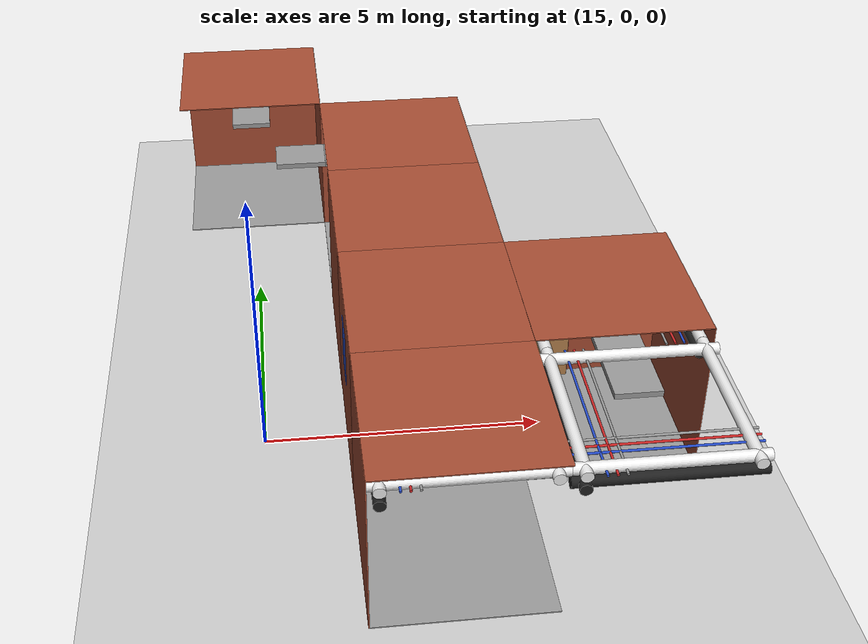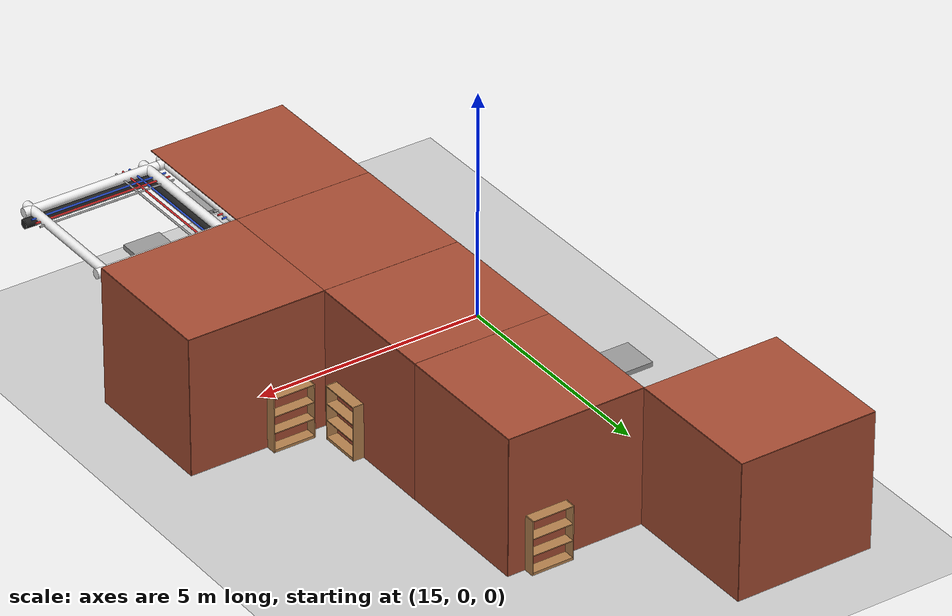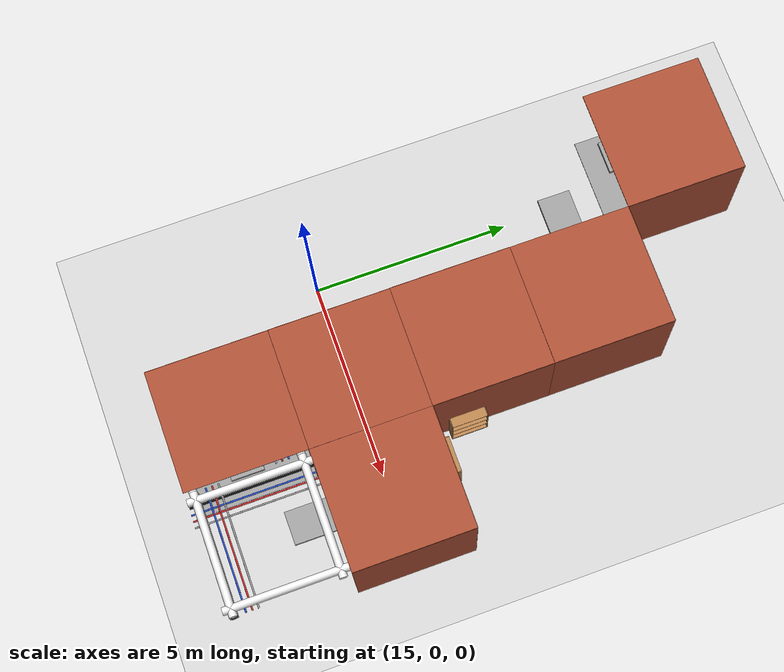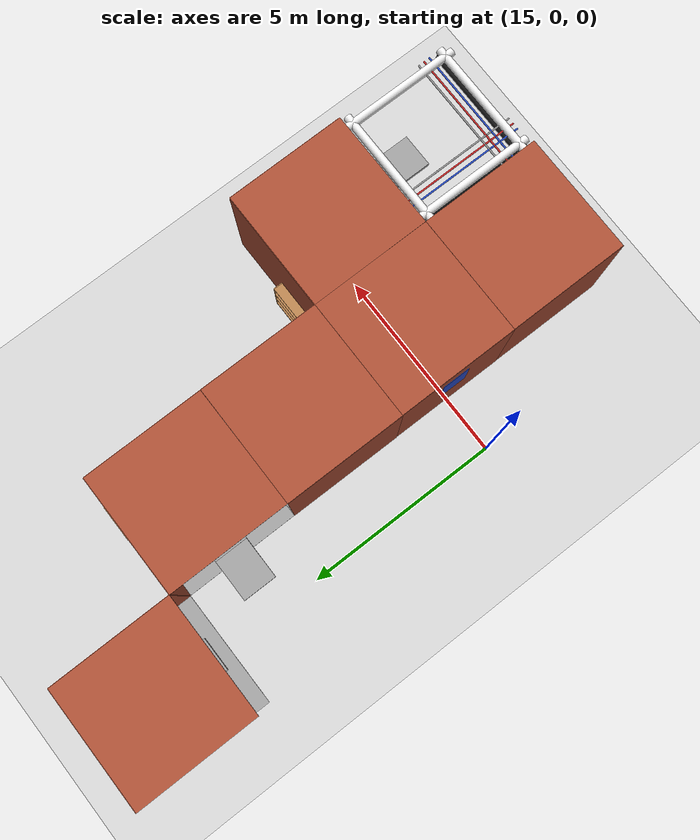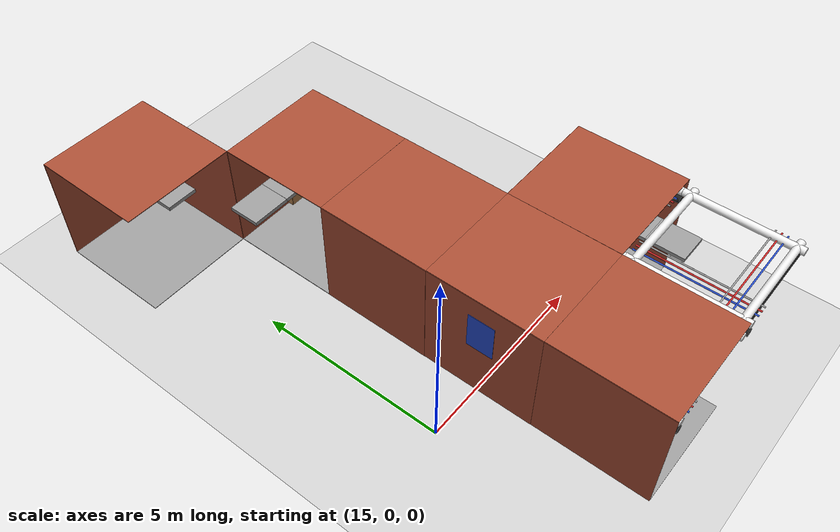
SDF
<sdf version="1.6">
 <world name="default">
  <model name="ground_plane">
   <static>1</static>
   <link name="link">
    <collision name="collision">
     <geometry><plane><normal>0 0 1</normal><size>200 200</size></plane></geometry>
     <surface><friction><ode><mu>100</mu><mu2>50</mu2></ode></friction></surface>
    </collision>
    <visual name="visual">
     <cast_shadows>0</cast_shadows>
     <geometry><plane><normal>0 0 1</normal><size>200 200</size></plane></geometry>
     <material>
      <script><uri>file://media/materials/scripts/gazebo.material</uri><name>Gazebo/Grey</name></script>
     </material>
    </visual>
   </link>
  </model>
  <model name="wall_front_5_3_0_2">
   <static>1</static>
   <pose>16.5 9.0 1.5 0.0 0.0 -1.57</pose>
   <link name="link">
    <collision name="collision"><geometry><box><size>3 0.02 3</size></box></geometry></collision>
    <visual name="visual">
     <material>
      <script><name>Gazebo/Bricks</name><uri>file://media/materials/scripts/gazebo.material</uri></script>
     </material>
     <geometry><box><size>3 0.02 3</size></box></geometry>
    </visual>
   </link>
  </model>
  <model name="wall_left_5_3_0_2">
   <static>1</static>
   <pose>15.0 10.5 1.5 0.0 0.0 0.0</pose>
   <link name="link">
    <collision name="collision"><geometry><box><size>3 0.02 3</size></box></geometry></collision>
    <visual name="visual">
     <material>
      <script><name>Gazebo/Bricks</name><uri>file://media/materials/scripts/gazebo.material</uri></script>
     </material>
     <geometry><box><size>3 0.02 3</size></box></geometry>
    </visual>
   </link>
  </model>
  <model name="wall_top_5_3_0_2">
   <static>1</static>
   <pose>15.0 9.0 3.0 1.57 0.0 -1.57</pose>
   <link name="link">
    <collision name="collision"><geometry><box><size>3 0.02 3</size></box></geometry></collision>
    <visual name="visual">
     <material>
      <script><name>Gazebo/Bricks</name><uri>file://media/materials/scripts/gazebo.material</uri></script>
     </material>
     <geometry><box><size>3 0.02 3</size></box></geometry>
    </visual>
   </link>
  </model>
  <model name="ceiling_1_5_3_1_2">
   <pose>15.0 8.0 2.55 0.0 0.0 0.0</pose>
   <link name="link_1">
    <visual name="visual">
     <geometry><box><size>0.8 1 0.1</size></box></geometry>
     <material>
      <script><uri>file://media/materials/scripts/gazebo.material</uri><name>Gazebo/Grey</name></script>
     </material>
    </visual>
    <collision name="collision"><geometry><box><size>0.8 1 0.1</size></box></geometry></collision>
   </link>
   <static>1</static>
  </model>
  <model name="wall_bottom_5_3_0_2">
   <static>1</static>
   <pose>15.0 9.0 0.0 0.0 0.0 -1.57</pose>
   <link name="link">
    <collision name="collision"><geometry><box><size>3 3 0.02</size></box></geometry></collision>
    <visual name="visual">
     <material>
      <script><name>Gazebo/Grey</name><uri>file://media/materials/scripts/gazebo.material</uri></script>
     </material>
     <geometry><box><size>3 3 0.02</size></box></geometry>
    </visual>
   </link>
  </model>
  <model name="ceiling_1_5_2_1_3">
   <pose>16.0 6.0 2.55 0.0 0.0 4.71</pose>
   <link name="link_1">
    <visual name="visual">
     <geometry><box><size>0.8 1 0.1</size></box></geometry>
     <material>
      <script><uri>file://media/materials/scripts/gazebo.material</uri><name>Gazebo/Grey</name></script>
     </material>
    </visual>
    <collision name="collision"><geometry><box><size>0.8 1 0.1</size></box></geometry></collision>
   </link>
   <static>1</static>
  </model>
  <model name="wall_front_6_2_0_2">
   <static>1</static>
   <pose>19.5 6.0 1.5 0.0 0.0 -1.57</pose>
   <link name="link">
    <collision name="collision"><geometry><box><size>3 0.02 3</size></box></geometry></collision>
    <visual name="visual">
     <material>
      <script><name>Gazebo/Bricks</name><uri>file://media/materials/scripts/gazebo.material</uri></script>
     </material>
     <geometry><box><size>3 0.02 3</size></box></geometry>
    </visual>
   </link>
  </model>
  <model name="wall_left_6_2_0_2">
   <static>1</static>
   <pose>18.0 7.5 1.5 0.0 0.0 0.0</pose>
   <link name="link">
    <collision name="collision"><geometry><box><size>3 0.02 3</size></box></geometry></collision>
    <visual name="visual">
     <material>
      <script><name>Gazebo/Bricks</name><uri>file://media/materials/scripts/gazebo.material</uri></script>
     </material>
     <geometry><box><size>3 0.02 3</size></box></geometry>
    </visual>
   </link>
  </model>
  <model name="wall_top_6_2_0_2">
   <static>1</static>
   <pose>18.0 6.0 3.0 1.57 0.0 -1.57</pose>
   <link name="link">
    <collision name="collision"><geometry><box><size>3 0.02 3</size></box></geometry></collision>
    <visual name="visual">
     <material>
      <script><name>Gazebo/Bricks</name><uri>file://media/materials/scripts/gazebo.material</uri></script>
     </material>
     <geometry><box><size>3 0.02 3</size></box></geometry>
    </visual>
   </link>
  </model>
  <model name="ceiling_1_6_2_0_2">
   <pose>17.0 6.0 2.55 0.0 0.0 -1.57</pose>
   <link name="link_1">
    <visual name="visual">
     <geometry><box><size>0.8 1 0.1</size></box></geometry>
     <material>
      <script><uri>file://media/materials/scripts/gazebo.material</uri><name>Gazebo/Grey</name></script>
     </material>
    </visual>
    <collision name="collision"><geometry><box><size>0.8 1 0.1</size></box></geometry></collision>
   </link>
   <static>1</static>
  </model>
  <model name="ceiling_1_6_2_1_2">
   <pose>18.0 5.0 2.55 0.0 0.0 0.0</pose>
   <link name="link_1">
    <visual name="visual">
     <geometry><box><size>0.8 1 0.1</size></box></geometry>
     <material>
      <script><uri>file://media/materials/scripts/gazebo.material</uri><name>Gazebo/Grey</name></script>
     </material>
    </visual>
    <collision name="collision"><geometry><box><size>0.8 1 0.1</size></box></geometry></collision>
   </link>
   <static>1</static>
  </model>
  <model name="bookshelf_6_2_0_2">
   <static>true</static>
   <pose>18.663503850525 7.35 0.0 0.0 0.0 -1.57</pose>
   <link name="link">
    <pose>0 0 0 0 0 -1.57</pose>
    <inertial><mass>1.0</mass></inertial>
    <collision name="back">
     <pose>0 0.005 0.6 0 0 0</pose>
     <geometry><box><size>0.9 0.01 1.2</size></box></geometry>
    </collision>
    <visual name="visual1">
     <pose>0 0.005 0.6 0 0 0</pose>
     <geometry><box><size>0.9 0.01 1.2</size></box></geometry>
     <material>
      <script><uri>file://media/materials/scripts/gazebo.material</uri><name>Gazebo/Wood</name></script>
     </material>
    </visual>
    <collision name="left_side">
     <pose>0.45 -0.195 0.6 0 0 0</pose>
     <geometry><box><size>0.02 0.4 1.2</size></box></geometry>
    </collision>
    <visual name="visual2">
     <pose>0.45 -0.195 0.6 0 0 0</pose>
     <geometry><box><size>0.02 0.4 1.2</size></box></geometry>
     <material>
      <script><uri>file://media/materials/scripts/gazebo.material</uri><name>Gazebo/Wood</name></script>
     </material>
    </visual>
    <collision name="right_side">
     <pose>-0.45 -0.195 0.6 0 0 0</pose>
     <geometry><box><size>0.02 0.4 1.2</size></box></geometry>
    </collision>
    <visual name="visual3">
     <pose>-0.45 -0.195 0.6 0 0 0</pose>
     <geometry><box><size>0.02 0.4 1.2</size></box></geometry>
     <material>
      <script><uri>file://media/materials/scripts/gazebo.material</uri><name>Gazebo/Wood</name></script>
     </material>
    </visual>
    <collision name="bottom">
     <pose>0 -0.195 0.03 0 0 0</pose>
     <geometry><box><size>0.88 0.4 0.06</size></box></geometry>
    </collision>
    <visual name="visual4">
     <pose>0 -0.195 0.03 0 0 0</pose>
     <geometry><box><size>0.88 0.4 0.06</size></box></geometry>
     <material>
      <script><uri>file://media/materials/scripts/gazebo.material</uri><name>Gazebo/Wood</name></script>
     </material>
    </visual>
    <collision name="top">
     <pose>0 -0.195 1.19 0 0 0</pose>
     <geometry><box><size>0.88 0.4 0.02</size></box></geometry>
    </collision>
    <visual name="visual5">
     <pose>0 -0.195 1.19 0 0 0</pose>
     <geometry><box><size>0.88 0.4 0.02</size></box></geometry>
     <material>
      <script><uri>file://media/materials/scripts/gazebo.material</uri><name>Gazebo/Wood</name></script>
     </material>
    </visual>
    <collision name="low_shelf">
     <pose>0 -0.195 0.43 0 0 0</pose>
     <geometry><box><size>0.88 0.4 0.02</size></box></geometry>
    </collision>
    <visual name="visual6">
     <pose>0 -0.195 0.43 0 0 0</pose>
     <geometry><box><size>0.88 0.4 0.02</size></box></geometry>
     <material>
      <script><uri>file://media/materials/scripts/gazebo.material</uri><name>Gazebo/Wood</name></script>
     </material>
    </visual>
    <collision name="high_shelf">
     <pose>0 -0.195 0.8 0 0 0</pose>
     <geometry><box><size>0.88 0.4 0.02</size></box></geometry>
    </collision>
    <visual name="visual7">
     <pose>0 -0.195 0.8 0 0 0</pose>
     <geometry><box><size>0.88 0.4 0.02</size></box></geometry>
     <material>
      <script><uri>file://media/materials/scripts/gazebo.material</uri><name>Gazebo/Wood</name></script>
     </material>
    </visual>
   </link>
  </model>
  <model name="wall_bottom_6_2_0_2">
   <static>1</static>
   <pose>18.0 6.0 0.0 0.0 0.0 -1.57</pose>
   <link name="link">
    <collision name="collision"><geometry><box><size>3 3 0.02</size></box></geometry></collision>
    <visual name="visual">
     <material>
      <script><name>Gazebo/Grey</name><uri>file://media/materials/scripts/gazebo.material</uri></script>
     </material>
     <geometry><box><size>3 3 0.02</size></box></geometry>
    </visual>
   </link>
  </model>
  <model name="wall_right_6_1_0_1">
   <static>1</static>
   <pose>16.5 3.0 1.5 0.0 0.0 4.71</pose>
   <link name="link">
    <collision name="collision"><geometry><box><size>3 0.02 3</size></box></geometry></collision>
    <visual name="visual">
     <material>
      <script><name>Gazebo/Bricks</name><uri>file://media/materials/scripts/gazebo.material</uri></script>
     </material>
     <geometry><box><size>3 0.02 3</size></box></geometry>
    </visual>
   </link>
  </model>
  <model name="wall_left_6_1_0_1">
   <static>1</static>
   <pose>19.5 3.0 1.5 0.0 0.0 4.71</pose>
   <link name="link">
    <collision name="collision"><geometry><box><size>3 0.02 3</size></box></geometry></collision>
    <visual name="visual">
     <material>
      <script><name>Gazebo/Bricks</name><uri>file://media/materials/scripts/gazebo.material</uri></script>
     </material>
     <geometry><box><size>3 0.02 3</size></box></geometry>
    </visual>
   </link>
  </model>
  <model name="wall_top_6_1_0_1">
   <static>1</static>
   <pose>18.0 3.0 3.0 1.57 0.0 3.14</pose>
   <link name="link">
    <collision name="collision"><geometry><box><size>3 0.02 3</size></box></geometry></collision>
    <visual name="visual">
     <material>
      <script><name>Gazebo/Bricks</name><uri>file://media/materials/scripts/gazebo.material</uri></script>
     </material>
     <geometry><box><size>3 0.02 3</size></box></geometry>
    </visual>
   </link>
  </model>
  <model name="ceiling_1_6_1_0_1">
   <pose>18.0 3.0 2.55 0.0 0.0 3.14</pose>
   <link name="link_1">
    <visual name="visual">
     <geometry><box><size>0.8 1 0.1</size></box></geometry>
     <material>
      <script><uri>file://media/materials/scripts/gazebo.material</uri><name>Gazebo/Grey</name></script>
     </material>
    </visual>
    <collision name="collision"><geometry><box><size>0.8 1 0.1</size></box></geometry></collision>
   </link>
   <static>1</static>
  </model>
  <model name="ceiling_1_6_1_1_1">
   <pose>18.0 4.0 2.55 0.0 0.0 3.14</pose>
   <link name="link_1">
    <visual name="visual">
     <geometry><box><size>0.8 1 0.1</size></box></geometry>
     <material>
      <script><uri>file://media/materials/scripts/gazebo.material</uri><name>Gazebo/Grey</name></script>
     </material>
    </visual>
    <collision name="collision"><geometry><box><size>0.8 1 0.1</size></box></geometry></collision>
   </link>
   <static>1</static>
  </model>
  <model name="ceiling_1_6_1_2_1">
   <pose>18.0 2.0 2.55 0.0 0.0 3.14</pose>
   <link name="link_1">
    <visual name="visual">
     <geometry><box><size>0.8 1 0.1</size></box></geometry>
     <material>
      <script><uri>file://media/materials/scripts/gazebo.material</uri><name>Gazebo/Grey</name></script>
     </material>
    </visual>
    <collision name="collision"><geometry><box><size>0.8 1 0.1</size></box></geometry></collision>
   </link>
   <static>1</static>
  </model>
  <model name="bookshelf_6_1_0_1">
   <static>true</static>
   <pose>19.35 2.3519090675655 0.0 0.0 0.0 3.14</pose>
   <link name="link">
    <pose>0 0 0 0 0 -1.57</pose>
    <inertial><mass>1.0</mass></inertial>
    <collision name="back">
     <pose>0 0.005 0.6 0 0 0</pose>
     <geometry><box><size>0.9 0.01 1.2</size></box></geometry>
    </collision>
    <visual name="visual1">
     <pose>0 0.005 0.6 0 0 0</pose>
     <geometry><box><size>0.9 0.01 1.2</size></box></geometry>
     <material>
      <script><uri>file://media/materials/scripts/gazebo.material</uri><name>Gazebo/Wood</name></script>
     </material>
    </visual>
    <collision name="left_side">
     <pose>0.45 -0.195 0.6 0 0 0</pose>
     <geometry><box><size>0.02 0.4 1.2</size></box></geometry>
    </collision>
    <visual name="visual2">
     <pose>0.45 -0.195 0.6 0 0 0</pose>
     <geometry><box><size>0.02 0.4 1.2</size></box></geometry>
     <material>
      <script><uri>file://media/materials/scripts/gazebo.material</uri><name>Gazebo/Wood</name></script>
     </material>
    </visual>
    <collision name="right_side">
     <pose>-0.45 -0.195 0.6 0 0 0</pose>
     <geometry><box><size>0.02 0.4 1.2</size></box></geometry>
    </collision>
    <visual name="visual3">
     <pose>-0.45 -0.195 0.6 0 0 0</pose>
     <geometry><box><size>0.02 0.4 1.2</size></box></geometry>
     <material>
      <script><uri>file://media/materials/scripts/gazebo.material</uri><name>Gazebo/Wood</name></script>
     </material>
    </visual>
    <collision name="bottom">
     <pose>0 -0.195 0.03 0 0 0</pose>
     <geometry><box><size>0.88 0.4 0.06</size></box></geometry>
    </collision>
    <visual name="visual4">
     <pose>0 -0.195 0.03 0 0 0</pose>
     <geometry><box><size>0.88 0.4 0.06</size></box></geometry>
     <material>
      <script><uri>file://media/materials/scripts/gazebo.material</uri><name>Gazebo/Wood</name></script>
     </material>
    </visual>
    <collision name="top">
     <pose>0 -0.195 1.19 0 0 0</pose>
     <geometry><box><size>0.88 0.4 0.02</size></box></geometry>
    </collision>
    <visual name="visual5">
     <pose>0 -0.195 1.19 0 0 0</pose>
     <geometry><box><size>0.88 0.4 0.02</size></box></geometry>
     <material>
      <script><uri>file://media/materials/scripts/gazebo.material</uri><name>Gazebo/Wood</name></script>
     </material>
    </visual>
    <collision name="low_shelf">
     <pose>0 -0.195 0.43 0 0 0</pose>
     <geometry><box><size>0.88 0.4 0.02</size></box></geometry>
    </collision>
    <visual name="visual6">
     <pose>0 -0.195 0.43 0 0 0</pose>
     <geometry><box><size>0.88 0.4 0.02</size></box></geometry>
     <material>
      <script><uri>file://media/materials/scripts/gazebo.material</uri><name>Gazebo/Wood</name></script>
     </material>
    </visual>
    <collision name="high_shelf">
     <pose>0 -0.195 0.8 0 0 0</pose>
     <geometry><box><size>0.88 0.4 0.02</size></box></geometry>
    </collision>
    <visual name="visual7">
     <pose>0 -0.195 0.8 0 0 0</pose>
     <geometry><box><size>0.88 0.4 0.02</size></box></geometry>
     <material>
      <script><uri>file://media/materials/scripts/gazebo.material</uri><name>Gazebo/Wood</name></script>
     </material>
    </visual>
   </link>
  </model>
  <model name="wall_bottom_6_1_0_1">
   <static>1</static>
   <pose>18.0 3.0 0.0 0.0 0.0 3.14</pose>
   <link name="link">
    <collision name="collision"><geometry><box><size>3 3 0.02</size></box></geometry></collision>
    <visual name="visual">
     <material>
      <script><name>Gazebo/Grey</name><uri>file://media/materials/scripts/gazebo.material</uri></script>
     </material>
     <geometry><box><size>3 3 0.02</size></box></geometry>
    </visual>
   </link>
  </model>
  <model name="wall_front_6_0_0_3">
   <static>1</static>
   <pose>18.0 -1.5 1.5 0.0 0.0 3.14</pose>
   <link name="link">
    <collision name="collision"><geometry><box><size>3 0.02 3</size></box></geometry></collision>
    <visual name="visual">
     <material>
      <script><name>Gazebo/Bricks</name><uri>file://media/materials/scripts/gazebo.material</uri></script>
     </material>
     <geometry><box><size>3 0.02 3</size></box></geometry>
    </visual>
   </link>
  </model>
  <model name="wall_right_6_0_0_3">
   <static>1</static>
   <pose>16.5 0.0 1.5 0.0 0.0 4.71</pose>
   <link name="link">
    <collision name="collision"><geometry><box><size>3 0.02 3</size></box></geometry></collision>
    <visual name="visual">
     <material>
      <script><name>Gazebo/Bricks</name><uri>file://media/materials/scripts/gazebo.material</uri></script>
     </material>
     <geometry><box><size>3 0.02 3</size></box></geometry>
    </visual>
   </link>
  </model>
  <model name="wall_top_6_0_0_3">
   <static>1</static>
   <pose>18.0 0.0 3.0 1.57 0.0 3.14</pose>
   <link name="link">
    <collision name="collision"><geometry><box><size>3 0.02 3</size></box></geometry></collision>
    <visual name="visual">
     <material>
      <script><name>Gazebo/Bricks</name><uri>file://media/materials/scripts/gazebo.material</uri></script>
     </material>
     <geometry><box><size>3 0.02 3</size></box></geometry>
    </visual>
   </link>
  </model>
  <model name="ceiling_1_6_0_0_3">
   <pose>18.0 1.0 2.55 0.0 0.0 3.14</pose>
   <link name="link_1">
    <visual name="visual">
     <geometry><box><size>0.8 1 0.1</size></box></geometry>
     <material>
      <script><uri>file://media/materials/scripts/gazebo.material</uri><name>Gazebo/Grey</name></script>
     </material>
    </visual>
    <collision name="collision"><geometry><box><size>0.8 1 0.1</size></box></geometry></collision>
   </link>
   <static>1</static>
  </model>
  <model name="ceiling_1_6_0_1_3">
   <pose>19.0 0.0 2.55 0.0 0.0 4.71</pose>
   <link name="link_1">
    <visual name="visual">
     <geometry><box><size>0.8 1 0.1</size></box></geometry>
     <material>
      <script><uri>file://media/materials/scripts/gazebo.material</uri><name>Gazebo/Grey</name></script>
     </material>
    </visual>
    <collision name="collision"><geometry><box><size>0.8 1 0.1</size></box></geometry></collision>
   </link>
   <static>1</static>
  </model>
  <model name="wall_bottom_6_0_0_3">
   <static>1</static>
   <pose>18.0 0.0 0.0 0.0 0.0 3.14</pose>
   <link name="link">
    <collision name="collision"><geometry><box><size>3 3 0.02</size></box></geometry></collision>
    <visual name="visual">
     <material>
      <script><name>Gazebo/Grey</name><uri>file://media/materials/scripts/gazebo.material</uri></script>
     </material>
     <geometry><box><size>3 3 0.02</size></box></geometry>
    </visual>
   </link>
  </model>
  <model name="panel_6_0_0_3">
   <static>1</static>
   <pose>16.5 0.0 1.95 0.0 0.0 3.14</pose>
   <link name="link">
    <collision name="collision"><geometry><box><size>0.04 0.7 1</size></box></geometry></collision>
    <visual name="visual">
     <material>
      <script><name>Gazebo/Blue</name><uri>file://media/materials/scripts/gazebo.material</uri></script>
     </material>
     <geometry><box><size>0.04 0.7 1</size></box></geometry>
    </visual>
   </link>
  </model>
  <model name="wall_front_7_0_0_2">
   <static>1</static>
   <pose>22.5 0.0 1.5 0.0 0.0 -1.57</pose>
   <link name="link">
    <collision name="collision"><geometry><box><size>3 0.02 3</size></box></geometry></collision>
    <visual name="visual">
     <material>
      <script><name>Gazebo/Bricks</name><uri>file://media/materials/scripts/gazebo.material</uri></script>
     </material>
     <geometry><box><size>3 0.02 3</size></box></geometry>
    </visual>
   </link>
  </model>
  <model name="wall_left_7_0_0_2">
   <static>1</static>
   <pose>21.0 1.5 1.5 0.0 0.0 0.0</pose>
   <link name="link">
    <collision name="collision"><geometry><box><size>3 0.02 3</size></box></geometry></collision>
    <visual name="visual">
     <material>
      <script><name>Gazebo/Bricks</name><uri>file://media/materials/scripts/gazebo.material</uri></script>
     </material>
     <geometry><box><size>3 0.02 3</size></box></geometry>
    </visual>
   </link>
  </model>
  <model name="wall_top_7_0_0_2">
   <static>1</static>
   <pose>21.0 0.0 3.0 1.57 0.0 -1.57</pose>
   <link name="link">
    <collision name="collision"><geometry><box><size>3 0.02 3</size></box></geometry></collision>
    <visual name="visual">
     <material>
      <script><name>Gazebo/Bricks</name><uri>file://media/materials/scripts/gazebo.material</uri></script>
     </material>
     <geometry><box><size>3 0.02 3</size></box></geometry>
    </visual>
   </link>
  </model>
  <model name="ceiling_1_7_0_0_2">
   <pose>20.0 0.0 2.55 0.0 0.0 -1.57</pose>
   <link name="link_1">
    <visual name="visual">
     <geometry><box><size>0.8 1 0.1</size></box></geometry>
     <material>
      <script><uri>file://media/materials/scripts/gazebo.material</uri><name>Gazebo/Grey</name></script>
     </material>
    </visual>
    <collision name="collision"><geometry><box><size>0.8 1 0.1</size></box></geometry></collision>
   </link>
   <static>1</static>
  </model>
  <model name="ceiling_1_7_0_1_2">
   <pose>21.0 -1.0 2.55 0.0 0.0 0.0</pose>
   <link name="link_1">
    <visual name="visual">
     <geometry><box><size>0.8 1 0.1</size></box></geometry>
     <material>
      <script><uri>file://media/materials/scripts/gazebo.material</uri><name>Gazebo/Grey</name></script>
     </material>
    </visual>
    <collision name="collision"><geometry><box><size>0.8 1 0.1</size></box></geometry></collision>
   </link>
   <static>1</static>
  </model>
  <model name="bookshelf_7_0_0_2">
   <static>true</static>
   <pose>20.3518051595955 1.35 0.0 0.0 0.0 -1.57</pose>
   <link name="link">
    <pose>0 0 0 0 0 -1.57</pose>
    <inertial><mass>1.0</mass></inertial>
    <collision name="back">
     <pose>0 0.005 0.6 0 0 0</pose>
     <geometry><box><size>0.9 0.01 1.2</size></box></geometry>
    </collision>
    <visual name="visual1">
     <pose>0 0.005 0.6 0 0 0</pose>
     <geometry><box><size>0.9 0.01 1.2</size></box></geometry>
     <material>
      <script><uri>file://media/materials/scripts/gazebo.material</uri><name>Gazebo/Wood</name></script>
     </material>
    </visual>
    <collision name="left_side">
     <pose>0.45 -0.195 0.6 0 0 0</pose>
     <geometry><box><size>0.02 0.4 1.2</size></box></geometry>
    </collision>
    <visual name="visual2">
     <pose>0.45 -0.195 0.6 0 0 0</pose>
     <geometry><box><size>0.02 0.4 1.2</size></box></geometry>
     <material>
      <script><uri>file://media/materials/scripts/gazebo.material</uri><name>Gazebo/Wood</name></script>
     </material>
    </visual>
    <collision name="right_side">
     <pose>-0.45 -0.195 0.6 0 0 0</pose>
     <geometry><box><size>0.02 0.4 1.2</size></box></geometry>
    </collision>
    <visual name="visual3">
     <pose>-0.45 -0.195 0.6 0 0 0</pose>
     <geometry><box><size>0.02 0.4 1.2</size></box></geometry>
     <material>
      <script><uri>file://media/materials/scripts/gazebo.material</uri><name>Gazebo/Wood</name></script>
     </material>
    </visual>
    <collision name="bottom">
     <pose>0 -0.195 0.03 0 0 0</pose>
     <geometry><box><size>0.88 0.4 0.06</size></box></geometry>
    </collision>
    <visual name="visual4">
     <pose>0 -0.195 0.03 0 0 0</pose>
     <geometry><box><size>0.88 0.4 0.06</size></box></geometry>
     <material>
      <script><uri>file://media/materials/scripts/gazebo.material</uri><name>Gazebo/Wood</name></script>
     </material>
    </visual>
    <collision name="top">
     <pose>0 -0.195 1.19 0 0 0</pose>
     <geometry><box><size>0.88 0.4 0.02</size></box></geometry>
    </collision>
    <visual name="visual5">
     <pose>0 -0.195 1.19 0 0 0</pose>
     <geometry><box><size>0.88 0.4 0.02</size></box></geometry>
     <material>
      <script><uri>file://media/materials/scripts/gazebo.material</uri><name>Gazebo/Wood</name></script>
     </material>
    </visual>
    <collision name="low_shelf">
     <pose>0 -0.195 0.43 0 0 0</pose>
     <geometry><box><size>0.88 0.4 0.02</size></box></geometry>
    </collision>
    <visual name="visual6">
     <pose>0 -0.195 0.43 0 0 0</pose>
     <geometry><box><size>0.88 0.4 0.02</size></box></geometry>
     <material>
      <script><uri>file://media/materials/scripts/gazebo.material</uri><name>Gazebo/Wood</name></script>
     </material>
    </visual>
    <collision name="high_shelf">
     <pose>0 -0.195 0.8 0 0 0</pose>
     <geometry><box><size>0.88 0.4 0.02</size></box></geometry>
    </collision>
    <visual name="visual7">
     <pose>0 -0.195 0.8 0 0 0</pose>
     <geometry><box><size>0.88 0.4 0.02</size></box></geometry>
     <material>
      <script><uri>file://media/materials/scripts/gazebo.material</uri><name>Gazebo/Wood</name></script>
     </material>
    </visual>
   </link>
  </model>
  <model name="wall_bottom_7_0_0_2">
   <static>1</static>
   <pose>21.0 0.0 0.0 0.0 0.0 -1.57</pose>
   <link name="link">
    <collision name="collision"><geometry><box><size>3 3 0.02</size></box></geometry></collision>
    <visual name="visual">
     <material>
      <script><name>Gazebo/Grey</name><uri>file://media/materials/scripts/gazebo.material</uri></script>
     </material>
     <geometry><box><size>3 3 0.02</size></box></geometry>
    </visual>
   </link>
  </model>
  <model name="ceiling_1_7_-1_0_2">
   <pose>21.0 -2.0 2.55 0.0 0.0 3.14</pose>
   <link name="link_1">
    <visual name="visual">
     <geometry><box><size>0.8 1 0.1</size></box></geometry>
     <material>
      <script><uri>file://media/materials/scripts/gazebo.material</uri><name>Gazebo/Grey</name></script>
     </material>
    </visual>
    <collision name="collision"><geometry><box><size>0.8 1 0.1</size></box></geometry></collision>
   </link>
   <static>1</static>
  </model>
  <model name="wall_front_6_-1_0_3">
   <static>1</static>
   <pose>16.5 -3.0 1.5 0.0 0.0 1.57</pose>
   <link name="link">
    <collision name="collision"><geometry><box><size>3 0.02 3</size></box></geometry></collision>
    <visual name="visual">
     <material>
      <script><name>Gazebo/Bricks</name><uri>file://media/materials/scripts/gazebo.material</uri></script>
     </material>
     <geometry><box><size>3 0.02 3</size></box></geometry>
    </visual>
   </link>
  </model>
  <model name="wall_right_6_-1_0_3">
   <static>1</static>
   <pose>18.0 -1.5 1.5 0.0 0.0 3.14</pose>
   <link name="link">
    <collision name="collision"><geometry><box><size>3 0.02 3</size></box></geometry></collision>
    <visual name="visual">
     <material>
      <script><name>Gazebo/Bricks</name><uri>file://media/materials/scripts/gazebo.material</uri></script>
     </material>
     <geometry><box><size>3 0.02 3</size></box></geometry>
    </visual>
   </link>
  </model>
  <model name="wall_top_6_-1_0_3">
   <static>1</static>
   <pose>18.0 -3.0 3.0 1.57 0.0 1.57</pose>
   <link name="link">
    <collision name="collision"><geometry><box><size>3 0.02 3</size></box></geometry></collision>
    <visual name="visual">
     <material>
      <script><name>Gazebo/Bricks</name><uri>file://media/materials/scripts/gazebo.material</uri></script>
     </material>
     <geometry><box><size>3 0.02 3</size></box></geometry>
    </visual>
   </link>
  </model>
  <model name="ceiling_1_6_-1_0_3">
   <pose>19.0 -3.0 2.55 0.0 0.0 1.57</pose>
   <link name="link_1">
    <visual name="visual">
     <geometry><box><size>0.8 1 0.1</size></box></geometry>
     <material>
      <script><uri>file://media/materials/scripts/gazebo.material</uri><name>Gazebo/Grey</name></script>
     </material>
    </visual>
    <collision name="collision"><geometry><box><size>0.8 1 0.1</size></box></geometry></collision>
   </link>
   <static>1</static>
  </model>
  <model name="wall_bottom_6_-1_0_3">
   <static>1</static>
   <pose>18.0 -3.0 0.0 0.0 0.0 1.57</pose>
   <link name="link">
    <collision name="collision"><geometry><box><size>3 3 0.02</size></box></geometry></collision>
    <visual name="visual">
     <material>
      <script><name>Gazebo/Grey</name><uri>file://media/materials/scripts/gazebo.material</uri></script>
     </material>
     <geometry><box><size>3 3 0.02</size></box></geometry>
    </visual>
   </link>
  </model>
  <model name="panel_6_-1_0_3">
   <static>1</static>
   <pose>18.0 -1.5 1.95 0.0 0.0 1.57</pose>
   <link name="link">
    <collision name="collision"><geometry><box><size>0.04 0.7 1</size></box></geometry></collision>
    <visual name="visual">
     <material>
      <script><name>Gazebo/Blue</name><uri>file://media/materials/scripts/gazebo.material</uri></script>
     </material>
     <geometry><box><size>0.04 0.7 1</size></box></geometry>
    </visual>
   </link>
  </model>
  <model name="white_pipe_left_1_7_0_0_2">
   <static>1</static>
   <pose>21.0 0.0 2.76 0.0 0.0 0.0</pose>
   <link name="link_0">
    <visual name="visual">
     <pose>-1.3 0 0 1.57 0 0</pose>
     <geometry><cylinder><radius>0.1</radius><length>3</length></cylinder></geometry>
     <material>
      <script><uri>file://media/materials/scripts/gazebo.material</uri><name>Gazebo/White</name></script>
     </material>
    </visual>
    <collision name="collision">
     <pose>-1.3 0 0 1.57 0 0</pose>
     <geometry><cylinder><radius>0.1</radius><length>3</length></cylinder></geometry>
    </collision>
   </link>
  </model>
  <model name="white_pipe_right_1_7_0_0_2">
   <static>1</static>
   <pose>21.0 0.0 2.76 0.0 0.0 0.0</pose>
   <link name="link_0">
    <visual name="visual">
     <pose>1.3 0 0 1.57 0 0</pose>
     <geometry><cylinder><radius>0.1</radius><length>3</length></cylinder></geometry>
     <material>
      <script><uri>file://media/materials/scripts/gazebo.material</uri><name>Gazebo/White</name></script>
     </material>
    </visual>
    <collision name="collision">
     <pose>1.3 0 0 1.57 0 0</pose>
     <geometry><cylinder><radius>0.1</radius><length>3</length></cylinder></geometry>
    </collision>
   </link>
  </model>
  <model name="black_pipe_right_1_7_0_0_2">
   <static>1</static>
   <pose>21.0 0.0 2.76 0.0 0.0 0.0</pose>
   <link name="link_0">
    <visual name="visual">
     <pose>1.3 0 -0.25 1.57 0 0</pose>
     <geometry><cylinder><radius>0.1</radius><length>3</length></cylinder></geometry>
     <material>
      <script><uri>file://media/materials/scripts/gazebo.material</uri><name>Gazebo/Black</name></script>
     </material>
    </visual>
    <collision name="collision">
     <pose>1.3 0 -0.25 1.57 0 0</pose>
     <geometry><cylinder><radius>0.1</radius><length>3</length></cylinder></geometry>
    </collision>
   </link>
  </model>
  <model name="grey_pipe_right_1_7_0_0_2">
   <static>1</static>
   <pose>21.0 0.0 2.76 0.0 0.0 0.0</pose>
   <link name="link_0">
    <visual name="visual">
     <pose>0.7 0 0 1.57 0 0</pose>
     <geometry><cylinder><radius>0.02</radius><length>3</length></cylinder></geometry>
     <material>
      <script><uri>file://media/materials/scripts/gazebo.material</uri><name>Gazebo/Grey</name></script>
     </material>
    </visual>
    <collision name="collision">
     <pose>0.7 0 0 1.57 0 0</pose>
     <geometry><cylinder><radius>0.02</radius><length>3</length></cylinder></geometry>
    </collision>
   </link>
  </model>
  <model name="red_pipe_right_1_7_0_0_2">
   <static>1</static>
   <pose>21.0 0.0 2.76 0.0 0.0 0.0</pose>
   <link name="link_0">
    <visual name="visual">
     <pose>0.85 0 0 1.57 0 0</pose>
     <geometry><cylinder><radius>0.02</radius><length>3</length></cylinder></geometry>
     <material>
      <script><uri>file://media/materials/scripts/gazebo.material</uri><name>Gazebo/Red</name></script>
     </material>
    </visual>
    <collision name="collision">
     <pose>0.85 0 0 1.57 0 0</pose>
     <geometry><cylinder><radius>0.02</radius><length>3</length></cylinder></geometry>
    </collision>
   </link>
  </model>
  <model name="blue_pipe_right_1_7_0_0_2">
   <static>1</static>
   <pose>21.0 0.0 2.76 0.0 0.0 0.0</pose>
   <link name="link_0">
    <visual name="visual">
     <pose>1 0 0 1.57 0 0</pose>
     <geometry><cylinder><radius>0.02</radius><length>3</length></cylinder></geometry>
     <material>
      <script><uri>file://media/materials/scripts/gazebo.material</uri><name>Gazebo/Blue</name></script>
     </material>
    </visual>
    <collision name="collision">
     <pose>1 0 0 1.57 0 0</pose>
     <geometry><cylinder><radius>0.02</radius><length>3</length></cylinder></geometry>
    </collision>
   </link>
  </model>
  <model name="white_pipe_left_7_-1_0_2">
   <static>1</static>
   <pose>21.0 -3.0 2.76 0.0 0.0 3.14</pose>
   <link name="link_0">
    <visual name="visual">
     <pose>-1.3 0 0 1.57 0 0</pose>
     <geometry><cylinder><radius>0.1</radius><length>3</length></cylinder></geometry>
     <material>
      <script><uri>file://media/materials/scripts/gazebo.material</uri><name>Gazebo/White</name></script>
     </material>
    </visual>
    <collision name="collision">
     <pose>-1.3 0 0 1.57 0 0</pose>
     <geometry><cylinder><radius>0.1</radius><length>3</length></cylinder></geometry>
    </collision>
   </link>
  </model>
  <model name="white_pipe_right_7_-1_0_2">
   <static>1</static>
   <pose>21.0 -3.0 2.76 0.0 0.0 3.14</pose>
   <link name="link_0">
    <visual name="visual">
     <pose>1.3 0 0 1.57 0 0</pose>
     <geometry><cylinder><radius>0.1</radius><length>3</length></cylinder></geometry>
     <material>
      <script><uri>file://media/materials/scripts/gazebo.material</uri><name>Gazebo/White</name></script>
     </material>
    </visual>
    <collision name="collision">
     <pose>1.3 0 0 1.57 0 0</pose>
     <geometry><cylinder><radius>0.1</radius><length>3</length></cylinder></geometry>
    </collision>
   </link>
  </model>
  <model name="black_pipe_right_7_-1_0_2">
   <static>1</static>
   <pose>21.0 -3.0 2.76 0.0 0.0 3.14</pose>
   <link name="link_0">
    <visual name="visual">
     <pose>1.3 0 -0.25 1.57 0 0</pose>
     <geometry><cylinder><radius>0.1</radius><length>3</length></cylinder></geometry>
     <material>
      <script><uri>file://media/materials/scripts/gazebo.material</uri><name>Gazebo/Black</name></script>
     </material>
    </visual>
    <collision name="collision">
     <pose>1.3 0 -0.25 1.57 0 0</pose>
     <geometry><cylinder><radius>0.1</radius><length>3</length></cylinder></geometry>
    </collision>
   </link>
  </model>
  <model name="grey_pipe_right_7_-1_0_2">
   <static>1</static>
   <pose>21.0 -3.0 2.76 0.0 0.0 3.14</pose>
   <link name="link_0">
    <visual name="visual">
     <pose>0.7 0 0 1.57 0 0</pose>
     <geometry><cylinder><radius>0.02</radius><length>3</length></cylinder></geometry>
     <material>
      <script><uri>file://media/materials/scripts/gazebo.material</uri><name>Gazebo/Grey</name></script>
     </material>
    </visual>
    <collision name="collision">
     <pose>0.7 0 0 1.57 0 0</pose>
     <geometry><cylinder><radius>0.02</radius><length>3</length></cylinder></geometry>
    </collision>
   </link>
  </model>
  <model name="red_pipe_right_7_-1_0_2">
   <static>1</static>
   <pose>21.0 -3.0 2.76 0.0 0.0 3.14</pose>
   <link name="link_0">
    <visual name="visual">
     <pose>0.85 0 0 1.57 0 0</pose>
     <geometry><cylinder><radius>0.02</radius><length>3</length></cylinder></geometry>
     <material>
      <script><uri>file://media/materials/scripts/gazebo.material</uri><name>Gazebo/Red</name></script>
     </material>
    </visual>
    <collision name="collision">
     <pose>0.85 0 0 1.57 0 0</pose>
     <geometry><cylinder><radius>0.02</radius><length>3</length></cylinder></geometry>
    </collision>
   </link>
  </model>
  <model name="blue_pipe_right_7_-1_0_2">
   <static>1</static>
   <pose>21.0 -3.0 2.76 0.0 0.0 3.14</pose>
   <link name="link_0">
    <visual name="visual">
     <pose>1 0 0 1.57 0 0</pose>
     <geometry><cylinder><radius>0.02</radius><length>3</length></cylinder></geometry>
     <material>
      <script><uri>file://media/materials/scripts/gazebo.material</uri><name>Gazebo/Blue</name></script>
     </material>
    </visual>
    <collision name="collision">
     <pose>1 0 0 1.57 0 0</pose>
     <geometry><cylinder><radius>0.02</radius><length>3</length></cylinder></geometry>
    </collision>
   </link>
  </model>
  <model name="white_pipe_left_1_7_-1_0_2">
   <static>1</static>
   <pose>21.0 -3.0 2.76 0.0 0.0 4.71</pose>
   <link name="link_0">
    <visual name="visual">
     <pose>-1.3 0 0 1.57 0 0</pose>
     <geometry><cylinder><radius>0.1</radius><length>3</length></cylinder></geometry>
     <material>
      <script><uri>file://media/materials/scripts/gazebo.material</uri><name>Gazebo/White</name></script>
     </material>
    </visual>
    <collision name="collision">
     <pose>-1.3 0 0 1.57 0 0</pose>
     <geometry><cylinder><radius>0.1</radius><length>3</length></cylinder></geometry>
    </collision>
   </link>
  </model>
  <model name="white_pipe_right_1_7_-1_0_2">
   <static>1</static>
   <pose>21.0 -3.0 2.76 0.0 0.0 4.71</pose>
   <link name="link_0">
    <visual name="visual">
     <pose>1.3 0 0 1.57 0 0</pose>
     <geometry><cylinder><radius>0.1</radius><length>3</length></cylinder></geometry>
     <material>
      <script><uri>file://media/materials/scripts/gazebo.material</uri><name>Gazebo/White</name></script>
     </material>
    </visual>
    <collision name="collision">
     <pose>1.3 0 0 1.57 0 0</pose>
     <geometry><cylinder><radius>0.1</radius><length>3</length></cylinder></geometry>
    </collision>
   </link>
  </model>
  <model name="black_pipe_right_1_7_-1_0_2">
   <static>1</static>
   <pose>21.0 -3.0 2.76 0.0 0.0 4.71</pose>
   <link name="link_0">
    <visual name="visual">
     <pose>1.3 0 -0.25 1.57 0 0</pose>
     <geometry><cylinder><radius>0.1</radius><length>3</length></cylinder></geometry>
     <material>
      <script><uri>file://media/materials/scripts/gazebo.material</uri><name>Gazebo/Black</name></script>
     </material>
    </visual>
    <collision name="collision">
     <pose>1.3 0 -0.25 1.57 0 0</pose>
     <geometry><cylinder><radius>0.1</radius><length>3</length></cylinder></geometry>
    </collision>
   </link>
  </model>
  <model name="grey_pipe_right_1_7_-1_0_2">
   <static>1</static>
   <pose>21.0 -3.0 2.76 0.0 0.0 4.71</pose>
   <link name="link_0">
    <visual name="visual">
     <pose>0.7 0 0 1.57 0 0</pose>
     <geometry><cylinder><radius>0.02</radius><length>3</length></cylinder></geometry>
     <material>
      <script><uri>file://media/materials/scripts/gazebo.material</uri><name>Gazebo/Grey</name></script>
     </material>
    </visual>
    <collision name="collision">
     <pose>0.7 0 0 1.57 0 0</pose>
     <geometry><cylinder><radius>0.02</radius><length>3</length></cylinder></geometry>
    </collision>
   </link>
  </model>
  <model name="red_pipe_right_1_7_-1_0_2">
   <static>1</static>
   <pose>21.0 -3.0 2.76 0.0 0.0 4.71</pose>
   <link name="link_0">
    <visual name="visual">
     <pose>0.85 0 0 1.57 0 0</pose>
     <geometry><cylinder><radius>0.02</radius><length>3</length></cylinder></geometry>
     <material>
      <script><uri>file://media/materials/scripts/gazebo.material</uri><name>Gazebo/Red</name></script>
     </material>
    </visual>
    <collision name="collision">
     <pose>0.85 0 0 1.57 0 0</pose>
     <geometry><cylinder><radius>0.02</radius><length>3</length></cylinder></geometry>
    </collision>
   </link>
  </model>
  <model name="blue_pipe_right_1_7_-1_0_2">
   <static>1</static>
   <pose>21.0 -3.0 2.76 0.0 0.0 4.71</pose>
   <link name="link_0">
    <visual name="visual">
     <pose>1 0 0 1.57 0 0</pose>
     <geometry><cylinder><radius>0.02</radius><length>3</length></cylinder></geometry>
     <material>
      <script><uri>file://media/materials/scripts/gazebo.material</uri><name>Gazebo/Blue</name></script>
     </material>
    </visual>
    <collision name="collision">
     <pose>1 0 0 1.57 0 0</pose>
     <geometry><cylinder><radius>0.02</radius><length>3</length></cylinder></geometry>
    </collision>
   </link>
  </model>
  <model name="white_pipe_left_6_-1_0_3">
   <static>1</static>
   <pose>18.0 -3.0 2.76 0.0 0.0 1.57</pose>
   <link name="link_0">
    <visual name="visual">
     <pose>-1.3 0 0 1.57 0 0</pose>
     <geometry><cylinder><radius>0.1</radius><length>3</length></cylinder></geometry>
     <material>
      <script><uri>file://media/materials/scripts/gazebo.material</uri><name>Gazebo/White</name></script>
     </material>
    </visual>
    <collision name="collision">
     <pose>-1.3 0 0 1.57 0 0</pose>
     <geometry><cylinder><radius>0.1</radius><length>3</length></cylinder></geometry>
    </collision>
   </link>
  </model>
  <model name="white_pipe_right_6_-1_0_3">
   <static>1</static>
   <pose>18.0 -3.0 2.76 0.0 0.0 1.57</pose>
   <link name="link_0">
    <visual name="visual">
     <pose>1.3 0 0 1.57 0 0</pose>
     <geometry><cylinder><radius>0.1</radius><length>3</length></cylinder></geometry>
     <material>
      <script><uri>file://media/materials/scripts/gazebo.material</uri><name>Gazebo/White</name></script>
     </material>
    </visual>
    <collision name="collision">
     <pose>1.3 0 0 1.57 0 0</pose>
     <geometry><cylinder><radius>0.1</radius><length>3</length></cylinder></geometry>
    </collision>
   </link>
  </model>
  <model name="black_pipe_right_6_-1_0_3">
   <static>1</static>
   <pose>18.0 -3.0 2.76 0.0 0.0 1.57</pose>
   <link name="link_0">
    <visual name="visual">
     <pose>1.3 0 -0.25 1.57 0 0</pose>
     <geometry><cylinder><radius>0.1</radius><length>3</length></cylinder></geometry>
     <material>
      <script><uri>file://media/materials/scripts/gazebo.material</uri><name>Gazebo/Black</name></script>
     </material>
    </visual>
    <collision name="collision">
     <pose>1.3 0 -0.25 1.57 0 0</pose>
     <geometry><cylinder><radius>0.1</radius><length>3</length></cylinder></geometry>
    </collision>
   </link>
  </model>
  <model name="grey_pipe_right_6_-1_0_3">
   <static>1</static>
   <pose>18.0 -3.0 2.76 0.0 0.0 1.57</pose>
   <link name="link_0">
    <visual name="visual">
     <pose>0.7 0 0 1.57 0 0</pose>
     <geometry><cylinder><radius>0.02</radius><length>3</length></cylinder></geometry>
     <material>
      <script><uri>file://media/materials/scripts/gazebo.material</uri><name>Gazebo/Grey</name></script>
     </material>
    </visual>
    <collision name="collision">
     <pose>0.7 0 0 1.57 0 0</pose>
     <geometry><cylinder><radius>0.02</radius><length>3</length></cylinder></geometry>
    </collision>
   </link>
  </model>
  <model name="red_pipe_right_6_-1_0_3">
   <static>1</static>
   <pose>18.0 -3.0 2.76 0.0 0.0 1.57</pose>
   <link name="link_0">
    <visual name="visual">
     <pose>0.85 0 0 1.57 0 0</pose>
     <geometry><cylinder><radius>0.02</radius><length>3</length></cylinder></geometry>
     <material>
      <script><uri>file://media/materials/scripts/gazebo.material</uri><name>Gazebo/Red</name></script>
     </material>
    </visual>
    <collision name="collision">
     <pose>0.85 0 0 1.57 0 0</pose>
     <geometry><cylinder><radius>0.02</radius><length>3</length></cylinder></geometry>
    </collision>
   </link>
  </model>
  <model name="blue_pipe_right_6_-1_0_3">
   <static>1</static>
   <pose>18.0 -3.0 2.76 0.0 0.0 1.57</pose>
   <link name="link_0">
    <visual name="visual">
     <pose>1 0 0 1.57 0 0</pose>
     <geometry><cylinder><radius>0.02</radius><length>3</length></cylinder></geometry>
     <material>
      <script><uri>file://media/materials/scripts/gazebo.material</uri><name>Gazebo/Blue</name></script>
     </material>
    </visual>
    <collision name="collision">
     <pose>1 0 0 1.57 0 0</pose>
     <geometry><cylinder><radius>0.02</radius><length>3</length></cylinder></geometry>
    </collision>
   </link>
  </model>
  <model name="white_pipe_left_1_6_-1_0_3">
   <static>1</static>
   <pose>18.0 -3.0 2.76 0.0 0.0 3.14</pose>
   <link name="link_0">
    <visual name="visual">
     <pose>-1.3 0 0 1.57 0 0</pose>
     <geometry><cylinder><radius>0.1</radius><length>3</length></cylinder></geometry>
     <material>
      <script><uri>file://media/materials/scripts/gazebo.material</uri><name>Gazebo/White</name></script>
     </material>
    </visual>
    <collision name="collision">
     <pose>-1.3 0 0 1.57 0 0</pose>
     <geometry><cylinder><radius>0.1</radius><length>3</length></cylinder></geometry>
    </collision>
   </link>
  </model>
  <model name="white_pipe_right_1_6_-1_0_3">
   <static>1</static>
   <pose>18.0 -3.0 2.76 0.0 0.0 3.14</pose>
   <link name="link_0">
    <visual name="visual">
     <pose>1.3 0 0 1.57 0 0</pose>
     <geometry><cylinder><radius>0.1</radius><length>3</length></cylinder></geometry>
     <material>
      <script><uri>file://media/materials/scripts/gazebo.material</uri><name>Gazebo/White</name></script>
     </material>
    </visual>
    <collision name="collision">
     <pose>1.3 0 0 1.57 0 0</pose>
     <geometry><cylinder><radius>0.1</radius><length>3</length></cylinder></geometry>
    </collision>
   </link>
  </model>
  <model name="black_pipe_right_1_6_-1_0_3">
   <static>1</static>
   <pose>18.0 -3.0 2.76 0.0 0.0 3.14</pose>
   <link name="link_0">
    <visual name="visual">
     <pose>1.3 0 -0.25 1.57 0 0</pose>
     <geometry><cylinder><radius>0.1</radius><length>3</length></cylinder></geometry>
     <material>
      <script><uri>file://media/materials/scripts/gazebo.material</uri><name>Gazebo/Black</name></script>
     </material>
    </visual>
    <collision name="collision">
     <pose>1.3 0 -0.25 1.57 0 0</pose>
     <geometry><cylinder><radius>0.1</radius><length>3</length></cylinder></geometry>
    </collision>
   </link>
  </model>
  <model name="grey_pipe_right_1_6_-1_0_3">
   <static>1</static>
   <pose>18.0 -3.0 2.76 0.0 0.0 3.14</pose>
   <link name="link_0">
    <visual name="visual">
     <pose>0.7 0 0 1.57 0 0</pose>
     <geometry><cylinder><radius>0.02</radius><length>3</length></cylinder></geometry>
     <material>
      <script><uri>file://media/materials/scripts/gazebo.material</uri><name>Gazebo/Grey</name></script>
     </material>
    </visual>
    <collision name="collision">
     <pose>0.7 0 0 1.57 0 0</pose>
     <geometry><cylinder><radius>0.02</radius><length>3</length></cylinder></geometry>
    </collision>
   </link>
  </model>
  <model name="red_pipe_right_1_6_-1_0_3">
   <static>1</static>
   <pose>18.0 -3.0 2.76 0.0 0.0 3.14</pose>
   <link name="link_0">
    <visual name="visual">
     <pose>0.85 0 0 1.57 0 0</pose>
     <geometry><cylinder><radius>0.02</radius><length>3</length></cylinder></geometry>
     <material>
      <script><uri>file://media/materials/scripts/gazebo.material</uri><name>Gazebo/Red</name></script>
     </material>
    </visual>
    <collision name="collision">
     <pose>0.85 0 0 1.57 0 0</pose>
     <geometry><cylinder><radius>0.02</radius><length>3</length></cylinder></geometry>
    </collision>
   </link>
  </model>
  <model name="blue_pipe_right_1_6_-1_0_3">
   <static>1</static>
   <pose>18.0 -3.0 2.76 0.0 0.0 3.14</pose>
   <link name="link_0">
    <visual name="visual">
     <pose>1 0 0 1.57 0 0</pose>
     <geometry><cylinder><radius>0.02</radius><length>3</length></cylinder></geometry>
     <material>
      <script><uri>file://media/materials/scripts/gazebo.material</uri><name>Gazebo/Blue</name></script>
     </material>
    </visual>
    <collision name="collision">
     <pose>1 0 0 1.57 0 0</pose>
     <geometry><cylinder><radius>0.02</radius><length>3</length></cylinder></geometry>
    </collision>
   </link>
  </model>
 </world>
</sdf>
